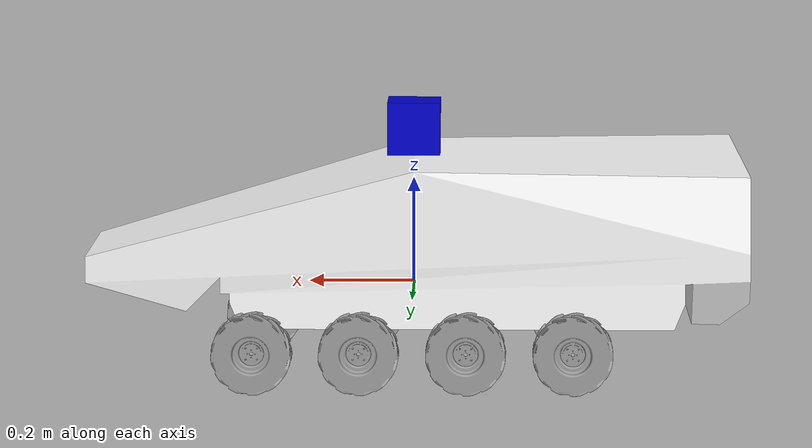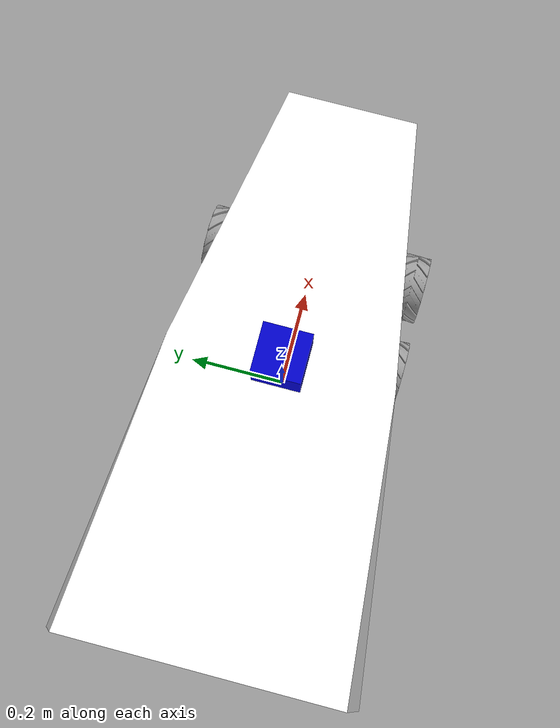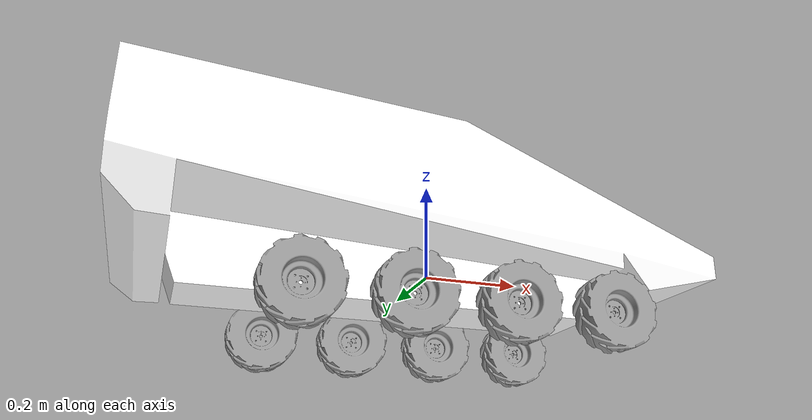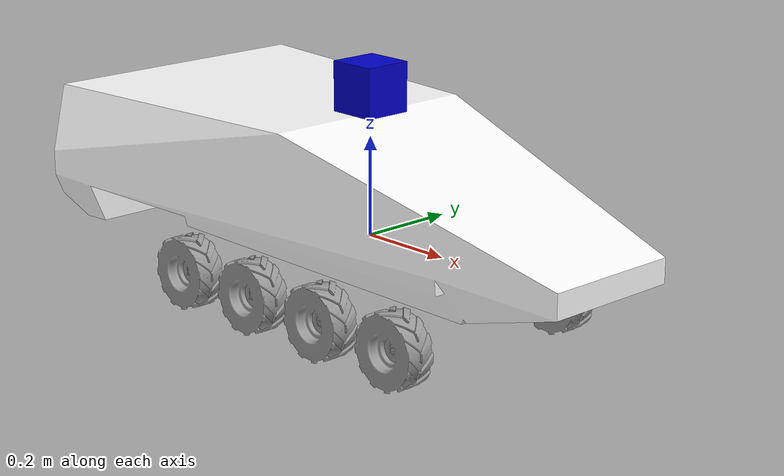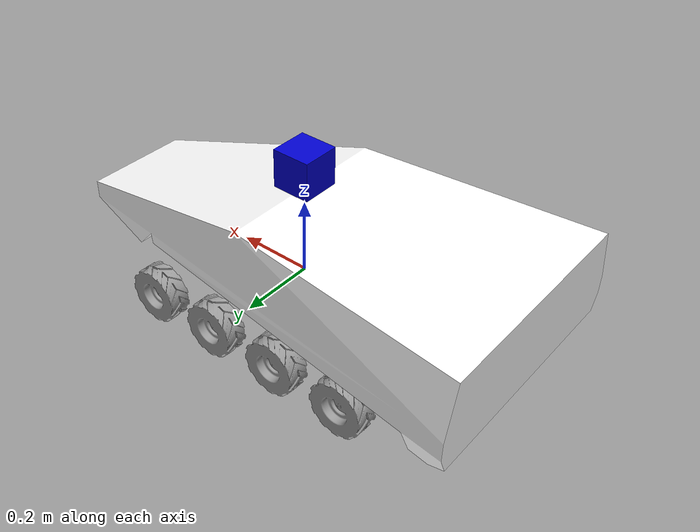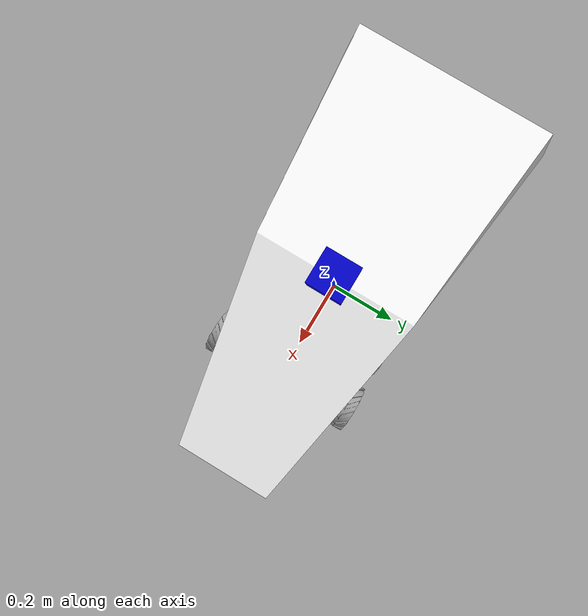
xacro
<?xml version="1.0"?>
<robot name="bot" xmlns:xacro="http://www.ros.org/wiki/xacro">

<xacro:property name="wheelRadius" value="0.0732"/>
<xacro:property name="wheelLength" value="0.05575"/>
<xacro:property name="leftWheel" value="left_wheel"/>
<xacro:property name="rightWheel" value="right_wheel"/>

<xacro:macro name="wheel" params="side num reflect xv yv zv">
  <link name="${side}_${num}">
    <visual>
      <origin rpy="0 1.57079632679 0" xyz="${xv} ${yv} ${zv}"/>
      <geometry>
	      <mesh filename="package://bot_description/meshes/wheel.dae" />
      </geometry>
      <material name="Grey"/>
    </visual>
    <collision>
	    <origin rpy="3.14592 0 0" xyz="${xv} ${yv} ${zv}"/>
      <geometry>
         <cylinder radius="0.07" length="0.08"/>
      </geometry>
    </collision>
    <inertial>
      <mass value = "0.1" />
      <inertia ixx="0.00143" ixy="0.0" ixz="0.0" iyy="0.00143" iyz="0.0" izz="0.00125"/>
    </inertial>

</link>

  <link name="${side}_${num}_dummy">

    <inertial>
      <mass value = "0.1" />
      <inertia ixx="0.00143" ixy="0.0" ixz="0.0" iyy="0.00143" iyz="0.0" izz="0.00125"/>
    </inertial>
  </link>

 <joint name="${side}_${num}_rev" type="revolute">
    <axis xyz="0 0 1" />
    <limit lower="-0.523599" upper="0.523599" effort="10000.0" velocity="100"/>
    <parent link="base_link"/>
    <child link="${side}_${num}_dummy"/>
    <origin rpy="0 0 0" xyz="${0.3 - (0.2 * num)} ${0.2 * reflect}  -0.10"/>
  </joint>

  <transmission name="${side}_${num}_trans2">
    <type>transmission_interface/SimpleTransmission</type>
    <actuator name="${side}_${num}_actuator2">
      <mechanicalReduction>1</mechanicalReduction>
      <hardwareInterface>hardware_interface/VelocityJointInterface </hardwareInterface>
    </actuator>
    <joint name="${side}_${num}_rev">
      <hardwareInterface>hardware_interface/VelocityJointInterface </hardwareInterface>
    </joint>
  </transmission>

  <joint name="${side}_${num}_joint" type="continuous">
    <axis xyz="0 0 1" />
    <limit effort="100000.0" velocity="100"/>
    <parent link="${side}_${num}_dummy"/>
    <child link="${side}_${num}"/>
    <origin rpy="0 ${3.14592/2} 1.57079632679" xyz="0 0 0"/>
  </joint>

  <gazebo reference="${side}_${num}_link">
    <material>Gazebo/Grey</material>
  </gazebo>

 <transmission name="${side}_${num}_trans">
    <type>transmission_interface/SimpleTransmission</type>
    <actuator name="${side}_${num}_actuator">
      <mechanicalReduction>1</mechanicalReduction>
      <hardwareInterface>hardware_interface/VelocityJointInterface</hardwareInterface>
    </actuator>
    <joint name="${side}_${num}_joint">
      <hardwareInterface>hardware_interface/VelocityJointInterface</hardwareInterface>
    </joint>
  </transmission>
</xacro:macro>

<!-- ============================= SENSORS ========================================= -->
<link name="hokuyo_link">
        <visual>
			<origin rpy="0 0 0" xyz="0 0 0"/>
            <geometry>
                <box size="0.1 0.1 0.1"/>
            </geometry>
			<material name="blue"/>
        </visual>
    </link>

	<joint name="hokuyo_joint" type="fixed">
		<parent link="base_link"/>
		<child link="hokuyo_link"/>
		<origin xyz="0.0 0.0 0.30" rpy="0 0 0" />
	</joint>

	<gazebo reference="hokuyo_link">
    <material>Gazebo/White</material>
	    <sensor name="head_hokuyo_sensor" type="ray">
	      <pose>0.05 0 0 0 0 0</pose>
	      <visualize>true</visualize>
	      <update_rate>40</update_rate>
	      <ray>
	        <scan>
	          <horizontal>
	            <samples>720</samples>
	            <resolution>1</resolution>
	            <min_angle>-1.570796</min_angle>
	            <max_angle>1.570796</max_angle>
	          </horizontal>
	        </scan>
	        <range>
	          <min>0.10</min>
	          <max>10.0</max>
	          <resolution>0.001</resolution>
	        </range>
	      </ray>
	      <plugin filename="libgazebo_ros_laser.so" name="gazebo_ros_head_hokuyo_controller">
	        <topicName>/bot/scan</topicName>
	        <frameName>/bot/hokuyo_link</frameName>
	      </plugin>
	    </sensor>
  	</gazebo>

  <material name="blue">
    <color rgba="0 0 0.8 1"/>
</material>

  <material name="white">
    <color rgba="1 1 1 1"/>
  </material>

 <material name="black">
    <color rgba="0 0 0 1"/>
  </material>

  <link name="base_link">
    <visual>
      <geometry>
        <mesh filename="package://bot_description/meshes/carfullblended.dae"/>
      </geometry>
      <origin rpy="0 0 1.5712645" xyz="-0.01 -0.007 -0.08"/>
      <material name="white"/>

    </visual>
    <collision>
      <geometry>
        <mesh filename="package://bot_description/meshes/carfullblended.dae"/>
      </geometry>
      <origin rpy="0 0 1.5712645" xyz="-0.01 -0.007 -0.08"/>
    </collision>

  </link>

  <link name="dummy_link">
    <inertial>
      <mass value = "1" />
      <inertia ixx="0.05666" ixy="0.0" ixz="0.0" iyy="0.00666" iyz="0.0" izz="0.05666"/>
    </inertial>
  </link>

  <joint name="dummy_joint" type="fixed">
    <parent link="base_link"/>
    <child link="dummy_link"/>
    <origin rpy="0 0 0" xyz="0 0 0"/>
  </joint>

<xacro:wheel side="left_wheel" num="0" reflect="1" xv="0" yv="0" zv="0.02"/>
<xacro:wheel side="left_wheel" num="1" reflect="1" xv="0" yv="0" zv="0.02"/>
<xacro:wheel side="left_wheel" num="2" reflect="1" xv="0" yv="0" zv="0.02"/>
<xacro:wheel side="left_wheel" num="3" reflect="1" xv="0" yv="0" zv="0.02"/>
<xacro:wheel side="right_wheel" num="0" reflect="-1" xv="0" yv="0" zv="-0.02"/>
<xacro:wheel side="right_wheel" num="1" reflect="-1" xv="0" yv="0" zv="-0.02"/>
<xacro:wheel side="right_wheel" num="2" reflect="-1" xv="0" yv="0" zv="-0.02"/>
<xacro:wheel side="right_wheel" num="3" reflect="-1" xv="0" yv="0" zv="-0.02"/>

  <gazebo>
    <plugin name="gazebo_ros_control" filename="libgazebo_ros_control.so">
    <robotNamespace>/bot</robotNamespace>
        <robotSimType>gazebo_ros_control/DefaultRobotHWSim</robotSimType>
  </plugin>

  </gazebo>

</robot>
